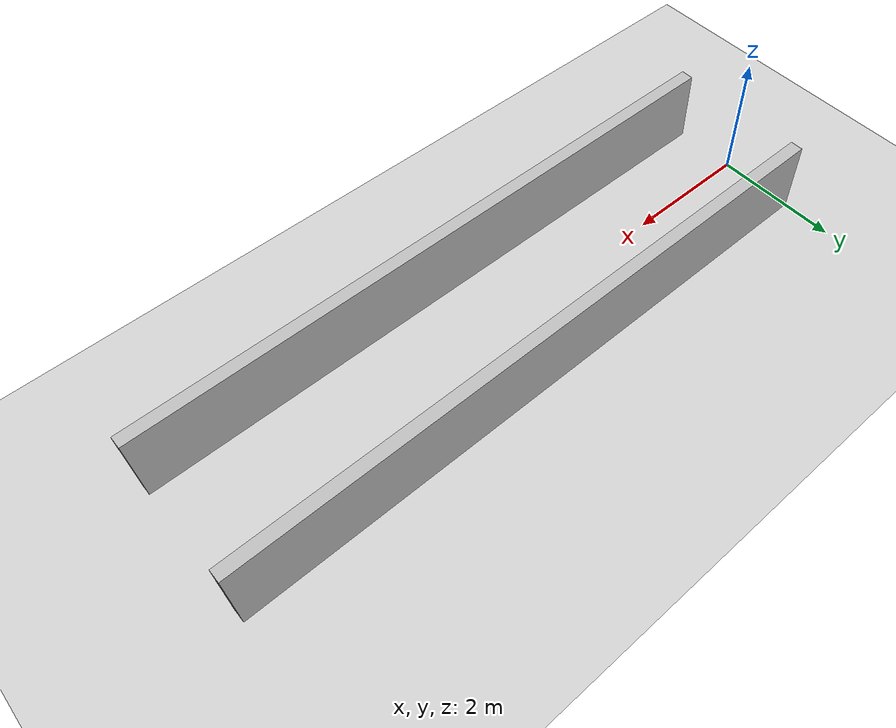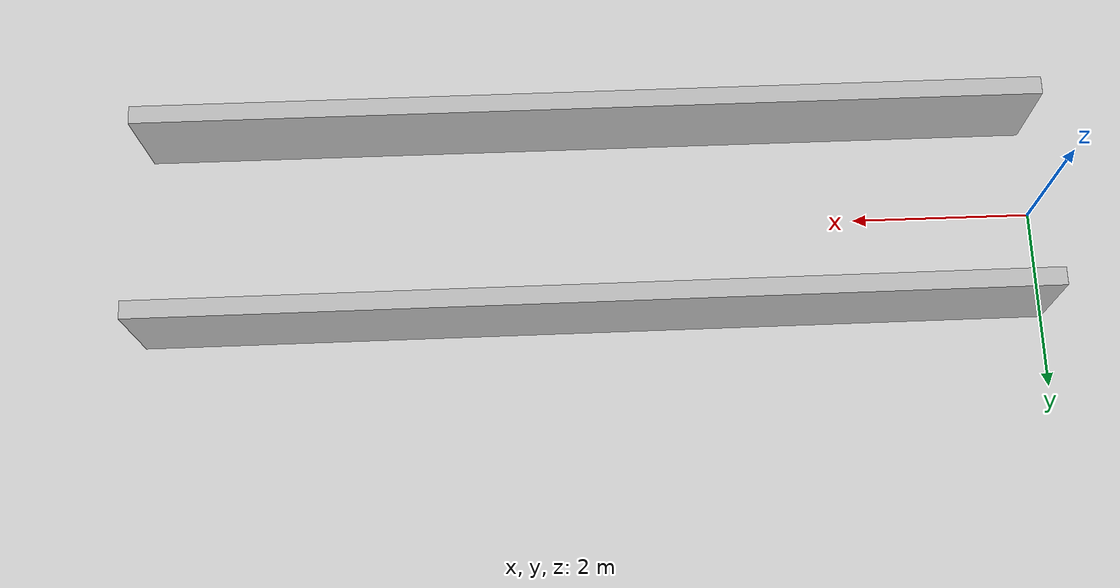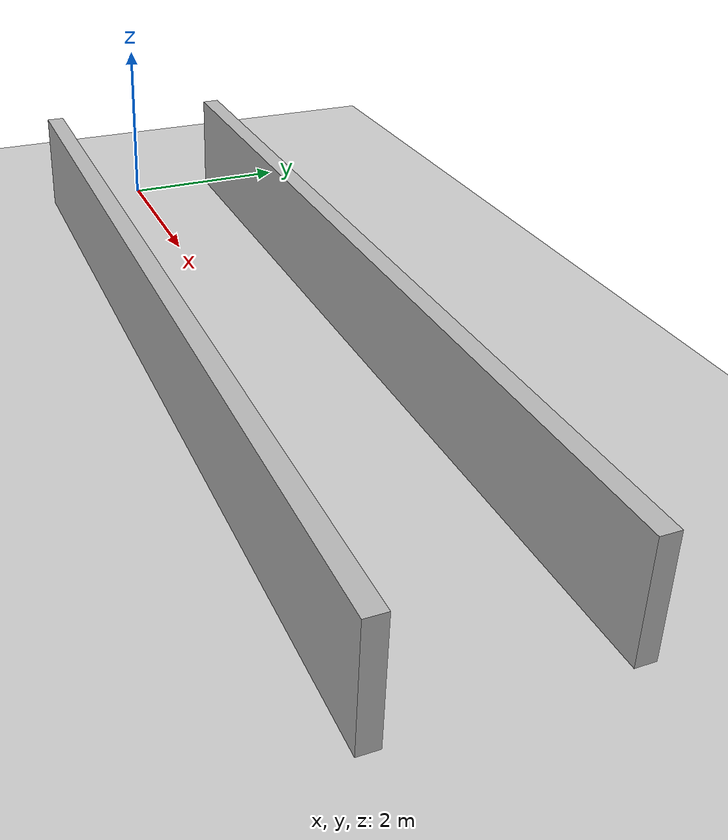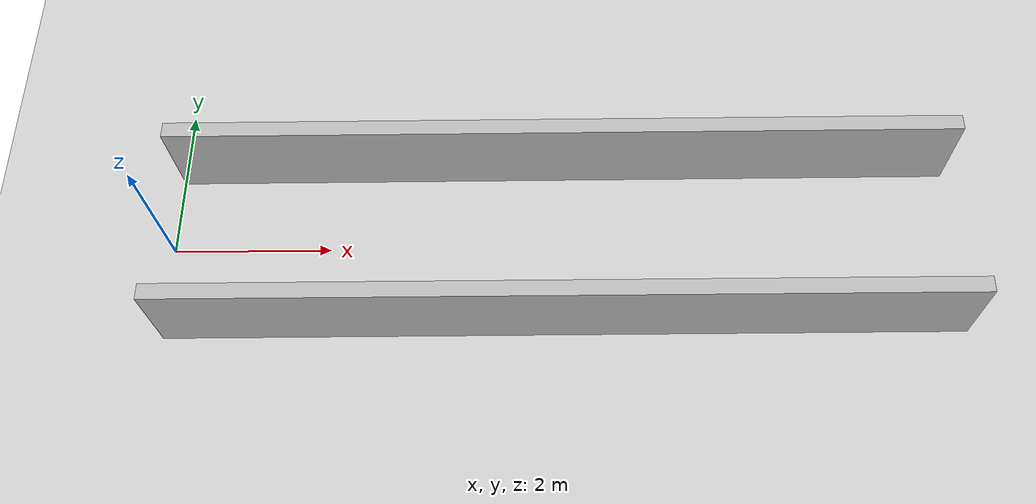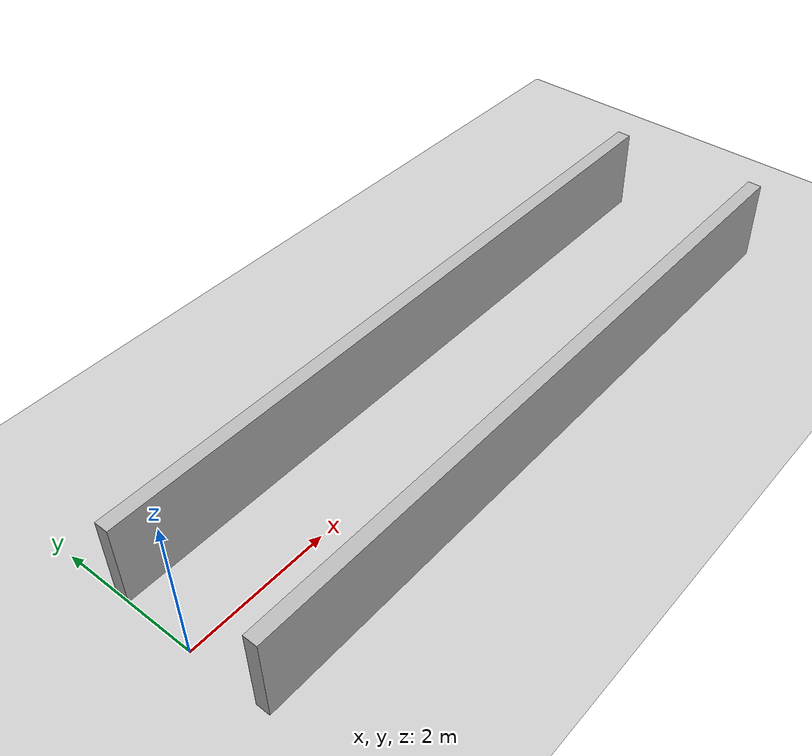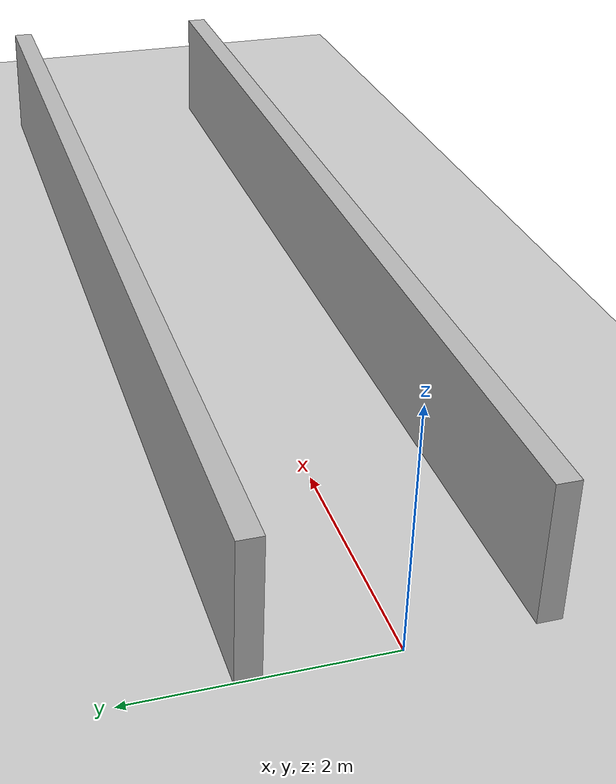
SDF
<?xml version="1.0"?>
<sdf version="1.6">
  <world name="v2-04g-r5-corridor-s5130">
    <gravity>0 0 -9.81</gravity>
    <physics name="v2_deterministic" type="ode">
      <max_step_size>0.002</max_step_size>
      <real_time_update_rate>500</real_time_update_rate>
    </physics>
    <include>
      <uri>model://sun</uri>
    </include>
    <include>
      <uri>model://ground_plane</uri>
    </include>
    <model name="corridor-left">
      <static>true</static>
      <pose>4.997431897 1.111086912 0.600000000 0 0 0.001686444</pose>
      <link name="link">
        <collision name="collision">
          <geometry>
            <box>
              <size>10.000000 0.200000 1.200000</size>
            </box>
          </geometry>
        </collision>
        <visual name="visual">
          <geometry>
            <box>
              <size>10.000000 0.200000 1.200000</size>
            </box>
          </geometry>
        </visual>
      </link>
    </model>
    <model name="corridor-right">
      <static>true</static>
      <pose>5.007573956 -1.094928445 0.600000000 0 0 -0.000425797</pose>
      <link name="link">
        <collision name="collision">
          <geometry>
            <box>
              <size>10.000000 0.200000 1.200000</size>
            </box>
          </geometry>
        </collision>
        <visual name="visual">
          <geometry>
            <box>
              <size>10.000000 0.200000 1.200000</size>
            </box>
          </geometry>
        </visual>
      </link>
    </model>
  </world>
</sdf>
